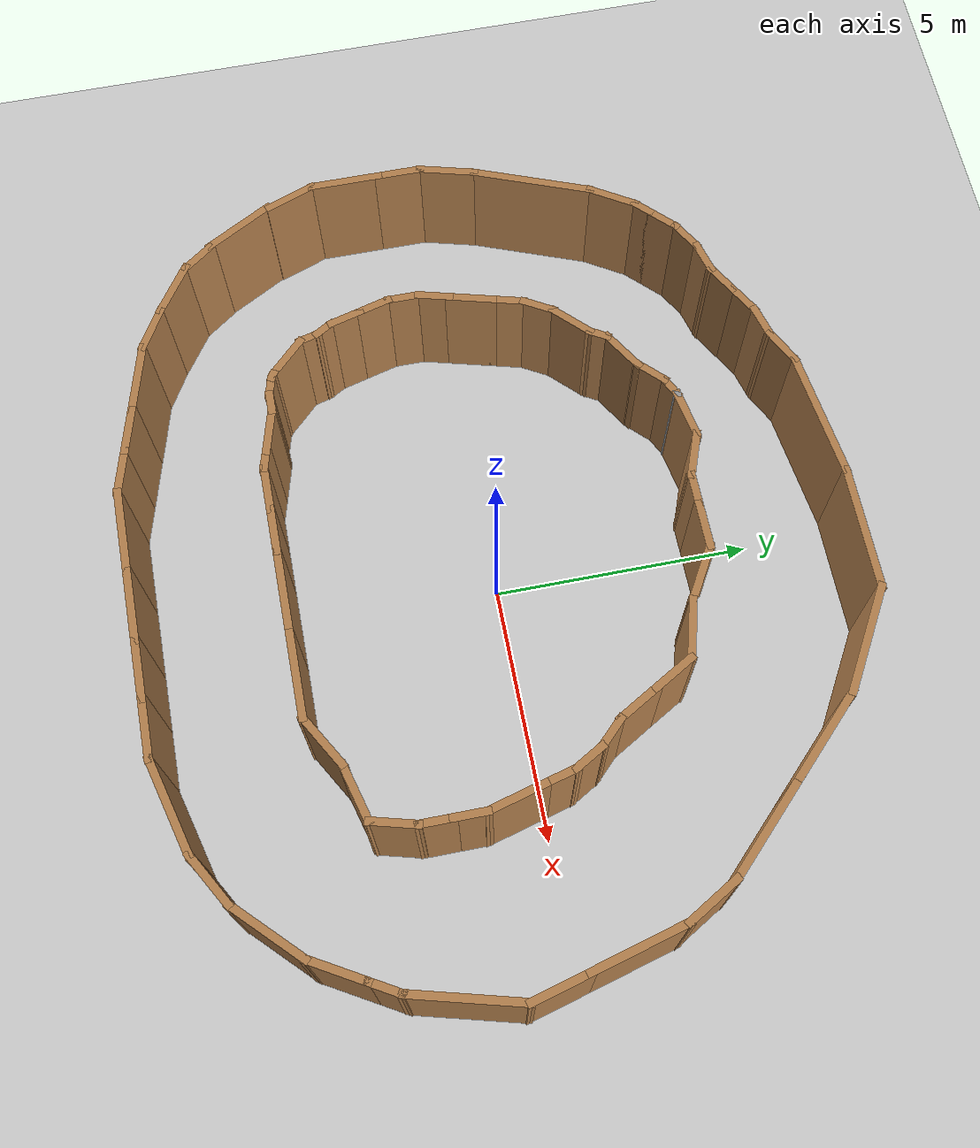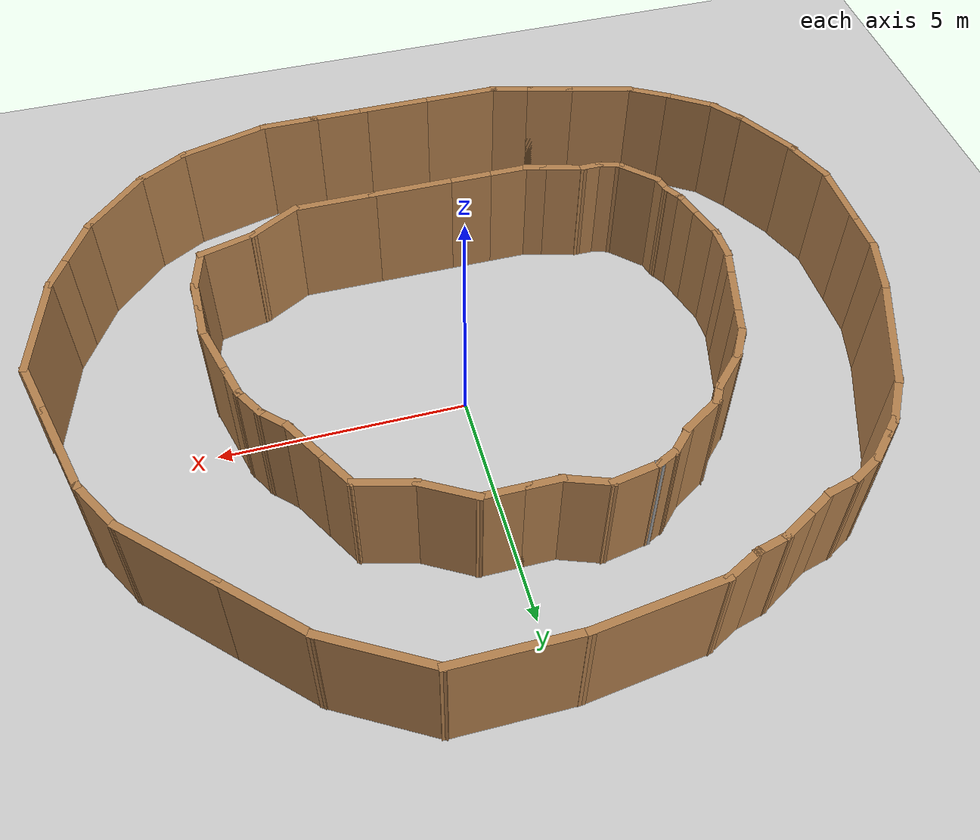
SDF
<sdf version="1.7">
 <world name="default">
  <light name="sun" type="directional">
   <pose>0 0 10 0 -0 0</pose>
   <diffuse>0.8 0.8 0.8 1</diffuse>
   <specular>0.2 0.2 0.2 1</specular>
   <attenuation>
    <range>1000</range>
    <constant>0.9</constant>
    <linear>0.01</linear>
    <quadratic>0.001</quadratic>
   </attenuation>
   <direction>-0.5 0.1 -0.9</direction>
   <spot><inner_angle>0</inner_angle><outer_angle>0</outer_angle><falloff>0</falloff></spot>
  </light>
  <model name="ground_plane">
   <static>1</static>
   <link name="link">
    <collision name="collision">
     <geometry><plane><normal>0 0 1</normal><size>100 100</size></plane></geometry>
     <surface><friction><ode><mu>100</mu><mu2>50</mu2></ode></friction></surface>
    </collision>
    <visual name="visual">
     <cast_shadows>0</cast_shadows>
     <geometry><plane><normal>0 0 1</normal><size>100 100</size></plane></geometry>
     <material>
      <script><uri>file://media/materials/scripts/gazebo.material</uri><name>Gazebo/Grey</name></script>
     </material>
    </visual>
   </link>
  </model>
  <gravity>0 0 -9.8</gravity>
  <magnetic_field>6e-06 2.3e-05 -4.2e-05</magnetic_field>
  <atmosphere type="adiabatic"/>
  <physics type="ode">
   <max_step_size>0.001</max_step_size>
   <real_time_factor>1</real_time_factor>
   <real_time_update_rate>1000</real_time_update_rate>
  </physics>
  <scene><ambient>0.4 0.4 0.4 1</ambient><background>0.7 0.7 0.7 1</background><shadows>1</shadows></scene>
  <audio><device>default</device></audio>
  <spherical_coordinates>
   <surface_model>EARTH_WGS84</surface_model>
   <latitude_deg>0</latitude_deg>
   <longitude_deg>0</longitude_deg>
   <elevation>0</elevation>
   <heading_deg>0</heading_deg>
  </spherical_coordinates>
  <model name="circle-room">
   <pose>-0.164675 0.002742 0 0 -0 0</pose>
   <link name="Wall_100">
    <collision name="Wall_100_Collision">
     <geometry><box><size>0.75 0.15 2.5</size></box></geometry>
     <pose>0 0 1.25 0 -0 0</pose>
    </collision>
    <visual name="Wall_100_Visual">
     <pose>0 0 1.25 0 -0 0</pose>
     <geometry><box><size>0.75 0.15 2.5</size></box></geometry>
     <material>
      <script><uri>file://media/materials/scripts/gazebo.material</uri><name>Gazebo/Wood</name></script>
      <ambient>1 1 1 1</ambient>
     </material>
     <meta><layer>0</layer></meta>
    </visual>
    <pose>3.98871 1.28822 0 0 -0 -0.785398</pose>
   </link>
   <link name="Wall_101">
    <collision name="Wall_101_Collision">
     <geometry><box><size>0.75 0.15 2.5</size></box></geometry>
     <pose>0 0 1.25 0 -0 0</pose>
    </collision>
    <visual name="Wall_101_Visual">
     <pose>0 0 1.25 0 -0 0</pose>
     <geometry><box><size>0.75 0.15 2.5</size></box></geometry>
     <material>
      <script><uri>file://media/materials/scripts/gazebo.material</uri><name>Gazebo/Wood</name></script>
      <ambient>1 1 1 1</ambient>
     </material>
     <meta><layer>0</layer></meta>
    </visual>
    <pose>4.35084 0.816276 0 0 -0 -1.0472</pose>
   </link>
   <link name="Wall_102">
    <collision name="Wall_102_Collision">
     <geometry><box><size>0.75 0.15 2.5</size></box></geometry>
     <pose>0 0 1.25 0 -0 0</pose>
    </collision>
    <visual name="Wall_102_Visual">
     <pose>0 0 1.25 0 -0 0</pose>
     <geometry><box><size>0.75 0.15 2.5</size></box></geometry>
     <material>
      <script><uri>file://media/materials/scripts/gazebo.material</uri><name>Gazebo/Wood</name></script>
      <ambient>1 1 1 1</ambient>
     </material>
     <meta><layer>0</layer></meta>
    </visual>
    <pose>4.57849 0.266691 0 0 -0 -1.309</pose>
   </link>
   <link name="Wall_103">
    <collision name="Wall_103_Collision">
     <geometry><box><size>1.25 0.15 2.5</size></box></geometry>
     <pose>0 0 1.25 0 -0 0</pose>
    </collision>
    <visual name="Wall_103_Visual">
     <pose>0 0 1.25 0 -0 0</pose>
     <geometry><box><size>1.25 0.15 2.5</size></box></geometry>
     <material>
      <script><uri>file://media/materials/scripts/gazebo.material</uri><name>Gazebo/Wood</name></script>
      <ambient>1 1 1 1</ambient>
     </material>
     <meta><layer>0</layer></meta>
    </visual>
    <pose>4.79849 -0.554346 0 0 -0 -1.309</pose>
   </link>
   <link name="Wall_104">
    <collision name="Wall_104_Collision">
     <geometry><box><size>0.75 0.15 2.5</size></box></geometry>
     <pose>0 0 1.25 0 -0 0</pose>
    </collision>
    <visual name="Wall_104_Visual">
     <pose>0 0 1.25 0 -0 0</pose>
     <geometry><box><size>0.75 0.15 2.5</size></box></geometry>
     <material>
      <script><uri>file://media/materials/scripts/gazebo.material</uri><name>Gazebo/Wood</name></script>
      <ambient>1 1 1 1</ambient>
     </material>
     <meta><layer>0</layer></meta>
    </visual>
    <pose>4.94084 -1.3856 0 0 -0 -1.5708</pose>
   </link>
   <link name="Wall_105">
    <collision name="Wall_105_Collision">
     <geometry><box><size>0.75 0.15 2.5</size></box></geometry>
     <pose>0 0 1.25 0 -0 0</pose>
    </collision>
    <visual name="Wall_105_Visual">
     <pose>0 0 1.25 0 -0 0</pose>
     <geometry><box><size>0.75 0.15 2.5</size></box></geometry>
     <material>
      <script><uri>file://media/materials/scripts/gazebo.material</uri><name>Gazebo/Wood</name></script>
      <ambient>1 1 1 1</ambient>
     </material>
     <meta><layer>0</layer></meta>
    </visual>
    <pose>4.94084 -1.98561 0 0 -0 -1.5708</pose>
   </link>
   <link name="Wall_106">
    <collision name="Wall_106_Collision">
     <geometry><box><size>1 0.15 2.5</size></box></geometry>
     <pose>0 0 1.25 0 -0 0</pose>
    </collision>
    <visual name="Wall_106_Visual">
     <pose>0 0 1.25 0 -0 0</pose>
     <geometry><box><size>1 0.15 2.5</size></box></geometry>
     <material>
      <script><uri>file://media/materials/scripts/gazebo.material</uri><name>Gazebo/Wood</name></script>
      <ambient>1 1 1 1</ambient>
     </material>
     <meta><layer>0</layer></meta>
    </visual>
    <pose>4.83084 -2.69612 0 0 -0 -1.8326</pose>
   </link>
   <link name="Wall_107">
    <collision name="Wall_107_Collision">
     <geometry><box><size>1.25 0.15 2.5</size></box></geometry>
     <pose>0 0 1.25 0 -0 0</pose>
    </collision>
    <visual name="Wall_107_Visual">
     <pose>0 0 1.25 0 -0 0</pose>
     <geometry><box><size>1.25 0.15 2.5</size></box></geometry>
     <material>
      <script><uri>file://media/materials/scripts/gazebo.material</uri><name>Gazebo/Wood</name></script>
      <ambient>1 1 1 1</ambient>
     </material>
     <meta><layer>0</layer></meta>
    </visual>
    <pose>4.18958 -3.24899 0 0 -0 -2.87979</pose>
   </link>
   <link name="Wall_108">
    <collision name="Wall_108_Collision">
     <geometry><box><size>1.25 0.15 2.5</size></box></geometry>
     <pose>0 0 1.25 0 -0 0</pose>
    </collision>
    <visual name="Wall_108_Visual">
     <pose>0 0 1.25 0 -0 0</pose>
     <geometry><box><size>1.25 0.15 2.5</size></box></geometry>
     <material>
      <script><uri>file://media/materials/scripts/gazebo.material</uri><name>Gazebo/Wood</name></script>
      <ambient>1 1 1 1</ambient>
     </material>
     <meta><layer>0</layer></meta>
    </visual>
    <pose>3.18201 -3.66634 0 0 -0 -2.61799</pose>
   </link>
   <link name="Wall_109">
    <collision name="Wall_109_Collision">
     <geometry><box><size>1.75 0.15 2.5</size></box></geometry>
     <pose>0 0 1.25 0 -0 0</pose>
    </collision>
    <visual name="Wall_109_Visual">
     <pose>0 0 1.25 0 -0 0</pose>
     <geometry><box><size>1.75 0.15 2.5</size></box></geometry>
     <material>
      <script><uri>file://media/materials/scripts/gazebo.material</uri><name>Gazebo/Wood</name></script>
      <ambient>1 1 1 1</ambient>
     </material>
     <meta><layer>0</layer></meta>
    </visual>
    <pose>1.90569 -3.94134 0 0 -0 3.14159</pose>
   </link>
   <link name="Wall_110">
    <collision name="Wall_110_Collision">
     <geometry><box><size>1.75 0.15 2.5</size></box></geometry>
     <pose>0 0 1.25 0 -0 0</pose>
    </collision>
    <visual name="Wall_110_Visual">
     <pose>0 0 1.25 0 -0 0</pose>
     <geometry><box><size>1.75 0.15 2.5</size></box></geometry>
     <material>
      <script><uri>file://media/materials/scripts/gazebo.material</uri><name>Gazebo/Wood</name></script>
      <ambient>1 1 1 1</ambient>
     </material>
     <meta><layer>0</layer></meta>
    </visual>
    <pose>0.305695 -3.94134 0 0 -0 3.14159</pose>
   </link>
   <link name="Wall_111">
    <collision name="Wall_111_Collision">
     <geometry><box><size>1 0.15 2.5</size></box></geometry>
     <pose>0 0 1.25 0 -0 0</pose>
    </collision>
    <visual name="Wall_111_Visual">
     <pose>0 0 1.25 0 -0 0</pose>
     <geometry><box><size>1 0.15 2.5</size></box></geometry>
     <material>
      <script><uri>file://media/materials/scripts/gazebo.material</uri><name>Gazebo/Wood</name></script>
      <ambient>1 1 1 1</ambient>
     </material>
     <meta><layer>0</layer></meta>
    </visual>
    <pose>-0.919305 -3.94134 0 0 -0 3.14159</pose>
   </link>
   <link name="Wall_112">
    <collision name="Wall_112_Collision">
     <geometry><box><size>1 0.15 2.5</size></box></geometry>
     <pose>0 0 1.25 0 -0 0</pose>
    </collision>
    <visual name="Wall_112_Visual">
     <pose>0 0 1.25 0 -0 0</pose>
     <geometry><box><size>1 0.15 2.5</size></box></geometry>
     <material>
      <script><uri>file://media/materials/scripts/gazebo.material</uri><name>Gazebo/Wood</name></script>
      <ambient>1 1 1 1</ambient>
     </material>
     <meta><layer>0</layer></meta>
    </visual>
    <pose>-1.7693 -3.94134 0 0 -0 3.14159</pose>
   </link>
   <link name="Wall_113">
    <collision name="Wall_113_Collision">
     <geometry><box><size>0.5 0.15 2.5</size></box></geometry>
     <pose>0 0 1.25 0 -0 0</pose>
    </collision>
    <visual name="Wall_113_Visual">
     <pose>0 0 1.25 0 -0 0</pose>
     <geometry><box><size>0.5 0.15 2.5</size></box></geometry>
     <material>
      <script><uri>file://media/materials/scripts/gazebo.material</uri><name>Gazebo/Wood</name></script>
      <ambient>1 1 1 1</ambient>
     </material>
     <meta><layer>0</layer></meta>
    </visual>
    <pose>-2.36334 -3.89605 0 0 -0 2.87979</pose>
   </link>
   <link name="Wall_114">
    <collision name="Wall_114_Collision">
     <geometry><box><size>1 0.15 2.5</size></box></geometry>
     <pose>0 0 1.25 0 -0 0</pose>
    </collision>
    <visual name="Wall_114_Visual">
     <pose>0 0 1.25 0 -0 0</pose>
     <geometry><box><size>1 0.15 2.5</size></box></geometry>
     <material>
      <script><uri>file://media/materials/scripts/gazebo.material</uri><name>Gazebo/Wood</name></script>
      <ambient>1 1 1 1</ambient>
     </material>
     <meta><layer>0</layer></meta>
    </visual>
    <pose>-2.9429 -3.74076 0 0 -0 2.87979</pose>
   </link>
   <link name="Wall_115">
    <collision name="Wall_115_Collision">
     <geometry><box><size>0.5 0.15 2.5</size></box></geometry>
     <pose>0 0 1.25 0 -0 0</pose>
    </collision>
    <visual name="Wall_115_Visual">
     <pose>0 0 1.25 0 -0 0</pose>
     <geometry><box><size>0.5 0.15 2.5</size></box></geometry>
     <material>
      <script><uri>file://media/materials/scripts/gazebo.material</uri><name>Gazebo/Wood</name></script>
      <ambient>1 1 1 1</ambient>
     </material>
     <meta><layer>0</layer></meta>
    </visual>
    <pose>-3.52842 -3.63076 0 0 -0 3.14159</pose>
   </link>
   <link name="Wall_116">
    <collision name="Wall_116_Collision">
     <geometry><box><size>0.5 0.15 2.5</size></box></geometry>
     <pose>0 0 1.25 0 -0 0</pose>
    </collision>
    <visual name="Wall_116_Visual">
     <pose>0 0 1.25 0 -0 0</pose>
     <geometry><box><size>0.5 0.15 2.5</size></box></geometry>
     <material>
      <script><uri>file://media/materials/scripts/gazebo.material</uri><name>Gazebo/Wood</name></script>
      <ambient>1 1 1 1</ambient>
     </material>
     <meta><layer>0</layer></meta>
    </visual>
    <pose>-3.87245 -3.58547 0 0 -0 2.87979</pose>
   </link>
   <link name="Wall_117">
    <collision name="Wall_117_Collision">
     <geometry><box><size>0.25 0.15 2.5</size></box></geometry>
     <pose>0 0 1.25 0 -0 0</pose>
    </collision>
    <visual name="Wall_117_Visual">
     <pose>0 0 1.25 0 -0 0</pose>
     <geometry><box><size>0.25 0.15 2.5</size></box></geometry>
     <material>
      <script><uri>file://media/materials/scripts/gazebo.material</uri><name>Gazebo/Wood</name></script>
      <ambient>1 1 1 1</ambient>
     </material>
     <meta><layer>0</layer></meta>
    </visual>
    <pose>-4.08479 -3.51517 0 0 -0 2.61799</pose>
   </link>
   <link name="Wall_118">
    <collision name="Wall_118_Collision">
     <geometry><box><size>1 0.15 2.5</size></box></geometry>
     <pose>0 0 1.25 0 -0 0</pose>
    </collision>
    <visual name="Wall_118_Visual">
     <pose>0 0 1.25 0 -0 0</pose>
     <geometry><box><size>1 0.15 2.5</size></box></geometry>
     <material>
      <script><uri>file://media/materials/scripts/gazebo.material</uri><name>Gazebo/Wood</name></script>
      <ambient>1 1 1 1</ambient>
     </material>
     <meta><layer>0</layer></meta>
    </visual>
    <pose>-4.42861 -3.18965 0 0 -0 2.35619</pose>
   </link>
   <link name="Wall_119">
    <collision name="Wall_119_Collision">
     <geometry><box><size>0.5 0.15 2.5</size></box></geometry>
     <pose>0 0 1.25 0 -0 0</pose>
    </collision>
    <visual name="Wall_119_Visual">
     <pose>0 0 1.25 0 -0 0</pose>
     <geometry><box><size>0.5 0.15 2.5</size></box></geometry>
     <material>
      <script><uri>file://media/materials/scripts/gazebo.material</uri><name>Gazebo/Wood</name></script>
      <ambient>1 1 1 1</ambient>
     </material>
     <meta><layer>0</layer></meta>
    </visual>
    <pose>-4.77443 -2.7201 0 0 -0 1.8326</pose>
   </link>
   <link name="Wall_12">
    <collision name="Wall_12_Collision">
     <geometry><box><size>2.61004 0.15 2.5</size></box></geometry>
     <pose>0 0 1.25 0 -0 0</pose>
    </collision>
    <visual name="Wall_12_Visual">
     <pose>0 0 1.25 0 -0 0</pose>
     <geometry><box><size>2.61004 0.15 2.5</size></box></geometry>
     <material>
      <script><uri>file://media/materials/scripts/gazebo.material</uri><name>Gazebo/Wood</name></script>
      <ambient>1 1 1 1</ambient>
     </material>
     <meta><layer>0</layer></meta>
    </visual>
    <pose>-1.30754 6.48321 0 0 -0 0.134152</pose>
   </link>
   <link name="Wall_120">
    <collision name="Wall_120_Collision">
     <geometry><box><size>0.5 0.15 2.5</size></box></geometry>
     <pose>0 0 1.25 0 -0 0</pose>
    </collision>
    <visual name="Wall_120_Visual">
     <pose>0 0 1.25 0 -0 0</pose>
     <geometry><box><size>0.5 0.15 2.5</size></box></geometry>
     <material>
      <script><uri>file://media/materials/scripts/gazebo.material</uri><name>Gazebo/Wood</name></script>
      <ambient>1 1 1 1</ambient>
     </material>
     <meta><layer>0</layer></meta>
    </visual>
    <pose>-4.90722 -2.3995 0 0 -0 2.0944</pose>
   </link>
   <link name="Wall_121">
    <collision name="Wall_121_Collision">
     <geometry><box><size>0.75 0.15 2.5</size></box></geometry>
     <pose>0 0 1.25 0 -0 0</pose>
    </collision>
    <visual name="Wall_121_Visual">
     <pose>0 0 1.25 0 -0 0</pose>
     <geometry><box><size>0.75 0.15 2.5</size></box></geometry>
     <material>
      <script><uri>file://media/materials/scripts/gazebo.material</uri><name>Gazebo/Wood</name></script>
      <ambient>1 1 1 1</ambient>
     </material>
     <meta><layer>0</layer></meta>
    </visual>
    <pose>-5.07237 -1.95817 0 0 -0 1.8326</pose>
   </link>
   <link name="Wall_122">
    <collision name="Wall_122_Collision">
     <geometry><box><size>0.75 0.15 2.5</size></box></geometry>
     <pose>0 0 1.25 0 -0 0</pose>
    </collision>
    <visual name="Wall_122_Visual">
     <pose>0 0 1.25 0 -0 0</pose>
     <geometry><box><size>0.75 0.15 2.5</size></box></geometry>
     <material>
      <script><uri>file://media/materials/scripts/gazebo.material</uri><name>Gazebo/Wood</name></script>
      <ambient>1 1 1 1</ambient>
     </material>
     <meta><layer>0</layer></meta>
    </visual>
    <pose>-5.22766 -1.37862 0 0 -0 1.8326</pose>
   </link>
   <link name="Wall_123">
    <collision name="Wall_123_Collision">
     <geometry><box><size>0.75 0.15 2.5</size></box></geometry>
     <pose>0 0 1.25 0 -0 0</pose>
    </collision>
    <visual name="Wall_123_Visual">
     <pose>0 0 1.25 0 -0 0</pose>
     <geometry><box><size>0.75 0.15 2.5</size></box></geometry>
     <material>
      <script><uri>file://media/materials/scripts/gazebo.material</uri><name>Gazebo/Wood</name></script>
      <ambient>1 1 1 1</ambient>
     </material>
     <meta><layer>0</layer></meta>
    </visual>
    <pose>-5.3053 -0.788839 0 0 -0 1.5708</pose>
   </link>
   <link name="Wall_124">
    <collision name="Wall_124_Collision">
     <geometry><box><size>0.75 0.15 2.5</size></box></geometry>
     <pose>0 0 1.25 0 -0 0</pose>
    </collision>
    <visual name="Wall_124_Visual">
     <pose>0 0 1.25 0 -0 0</pose>
     <geometry><box><size>0.75 0.15 2.5</size></box></geometry>
     <material>
      <script><uri>file://media/materials/scripts/gazebo.material</uri><name>Gazebo/Wood</name></script>
      <ambient>1 1 1 1</ambient>
     </material>
     <meta><layer>0</layer></meta>
    </visual>
    <pose>-5.22766 -0.199061 0 0 -0 1.309</pose>
   </link>
   <link name="Wall_125">
    <collision name="Wall_125_Collision">
     <geometry><box><size>1 0.15 2.5</size></box></geometry>
     <pose>0 0 1.25 0 -0 0</pose>
    </collision>
    <visual name="Wall_125_Visual">
     <pose>0 0 1.25 0 -0 0</pose>
     <geometry><box><size>1 0.15 2.5</size></box></geometry>
     <material>
      <script><uri>file://media/materials/scripts/gazebo.material</uri><name>Gazebo/Wood</name></script>
      <ambient>1 1 1 1</ambient>
     </material>
     <meta><layer>0</layer></meta>
    </visual>
    <pose>-5.04001 0.501235 0 0 -0 1.309</pose>
   </link>
   <link name="Wall_126">
    <collision name="Wall_126_Collision">
     <geometry><box><size>0.75 0.15 2.5</size></box></geometry>
     <pose>0 0 1.25 0 -0 0</pose>
    </collision>
    <visual name="Wall_126_Visual">
     <pose>0 0 1.25 0 -0 0</pose>
     <geometry><box><size>0.75 0.15 2.5</size></box></geometry>
     <material>
      <script><uri>file://media/materials/scripts/gazebo.material</uri><name>Gazebo/Wood</name></script>
      <ambient>1 1 1 1</ambient>
     </material>
     <meta><layer>0</layer></meta>
    </visual>
    <pose>-4.85237 1.20153 0 0 -0 1.309</pose>
   </link>
   <link name="Wall_127">
    <collision name="Wall_127_Collision">
     <geometry><box><size>0.75 0.15 2.5</size></box></geometry>
     <pose>0 0 1.25 0 -0 0</pose>
    </collision>
    <visual name="Wall_127_Visual">
     <pose>0 0 1.25 0 -0 0</pose>
     <geometry><box><size>0.75 0.15 2.5</size></box></geometry>
     <material>
      <script><uri>file://media/materials/scripts/gazebo.material</uri><name>Gazebo/Wood</name></script>
      <ambient>1 1 1 1</ambient>
     </material>
     <meta><layer>0</layer></meta>
    </visual>
    <pose>-4.62472 1.75112 0 0 -0 1.0472</pose>
   </link>
   <link name="Wall_128">
    <collision name="Wall_128_Collision">
     <geometry><box><size>1 0.15 2.5</size></box></geometry>
     <pose>0 0 1.25 0 -0 0</pose>
    </collision>
    <visual name="Wall_128_Visual">
     <pose>0 0 1.25 0 -0 0</pose>
     <geometry><box><size>1 0.15 2.5</size></box></geometry>
     <material>
      <script><uri>file://media/materials/scripts/gazebo.material</uri><name>Gazebo/Wood</name></script>
      <ambient>1 1 1 1</ambient>
     </material>
     <meta><layer>0</layer></meta>
    </visual>
    <pose>-4.1742 2.31144 0 0 -0 0.785398</pose>
   </link>
   <link name="Wall_129">
    <collision name="Wall_129_Collision">
     <geometry><box><size>0.5 0.15 2.5</size></box></geometry>
     <pose>0 0 1.25 0 -0 0</pose>
    </collision>
    <visual name="Wall_129_Visual">
     <pose>0 0 1.25 0 -0 0</pose>
     <geometry><box><size>0.5 0.15 2.5</size></box></geometry>
     <material>
      <script><uri>file://media/materials/scripts/gazebo.material</uri><name>Gazebo/Wood</name></script>
      <ambient>1 1 1 1</ambient>
     </material>
     <meta><layer>0</layer></meta>
    </visual>
    <pose>-3.78618 2.76352 0 0 -0 1.0472</pose>
   </link>
   <link name="Wall_13">
    <collision name="Wall_13_Collision">
     <geometry><box><size>2.5 0.15 2.5</size></box></geometry>
     <pose>0 0 1.25 0 -0 0</pose>
    </collision>
    <visual name="Wall_13_Visual">
     <pose>0 0 1.25 0 -0 0</pose>
     <geometry><box><size>2.5 0.15 2.5</size></box></geometry>
     <material>
      <script><uri>file://media/materials/scripts/gazebo.material</uri><name>Gazebo/Wood</name></script>
      <ambient>1 1 1 1</ambient>
     </material>
     <meta><layer>0</layer></meta>
    </visual>
    <pose>1.08643 6.64773 0 0 -0 0</pose>
   </link>
   <link name="Wall_130">
    <collision name="Wall_130_Collision">
     <geometry><box><size>0.993936 0.15 2.5</size></box></geometry>
     <pose>0 0 1.25 0 -0 0</pose>
    </collision>
    <visual name="Wall_130_Visual">
     <pose>0 0 1.25 0 -0 0</pose>
     <geometry><box><size>0.993936 0.15 2.5</size></box></geometry>
     <material>
      <script><uri>file://media/materials/scripts/gazebo.material</uri><name>Gazebo/Wood</name></script>
      <ambient>1 1 1 1</ambient>
     </material>
     <meta><layer>0</layer></meta>
    </visual>
    <pose>-3.33937 3.13632 0 0 -0 0.551913</pose>
   </link>
   <link name="Wall_131">
    <collision name="Wall_131_Collision">
     <geometry><box><size>0.75 0.15 2.5</size></box></geometry>
     <pose>0 0 1.25 0 -0 0</pose>
    </collision>
    <visual name="Wall_131_Visual">
     <pose>0 0 1.25 0 -0 0</pose>
     <geometry><box><size>0.75 0.15 2.5</size></box></geometry>
     <material>
      <script><uri>file://media/materials/scripts/gazebo.material</uri><name>Gazebo/Wood</name></script>
      <ambient>1 1 1 1</ambient>
     </material>
     <meta><layer>0</layer></meta>
    </visual>
    <pose>-2.78541 3.5697 0 0 -0 0.785398</pose>
   </link>
   <link name="Wall_132">
    <collision name="Wall_132_Collision">
     <geometry><box><size>0.507202 0.15 2.5</size></box></geometry>
     <pose>0 0 1.25 0 -0 0</pose>
    </collision>
    <visual name="Wall_132_Visual">
     <pose>0 0 1.25 0 -0 0</pose>
     <geometry><box><size>0.507202 0.15 2.5</size></box></geometry>
     <material>
      <script><uri>file://media/materials/scripts/gazebo.material</uri><name>Gazebo/Wood</name></script>
      <ambient>1 1 1 1</ambient>
     </material>
     <meta><layer>0</layer></meta>
    </visual>
    <pose>-2.39549 3.86058 0 0 -0 0.456663</pose>
   </link>
   <link name="Wall_133">
    <collision name="Wall_133_Collision">
     <geometry><box><size>0.15 0.15 2.5</size></box></geometry>
     <pose>0 0 1.25 0 -0 0</pose>
    </collision>
    <visual name="Wall_133_Visual">
     <pose>0 0 1.25 0 -0 0</pose>
     <geometry><box><size>0.15 0.15 2.5</size></box></geometry>
     <material>
      <script><uri>file://media/materials/scripts/gazebo.material</uri><name>Gazebo/Grey</name></script>
      <ambient>1 1 1 1</ambient>
     </material>
     <meta><layer>0</layer></meta>
    </visual>
    <pose>-2.23519 3.93934 0 0 -0 0</pose>
   </link>
   <link name="Wall_134">
    <collision name="Wall_134_Collision">
     <geometry><box><size>1.05405 0.15 2.5</size></box></geometry>
     <pose>0 0 1.25 0 -0 0</pose>
    </collision>
    <visual name="Wall_134_Visual">
     <pose>0 0 1.25 0 -0 0</pose>
     <geometry><box><size>1.05405 0.15 2.5</size></box></geometry>
     <material>
      <script><uri>file://media/materials/scripts/gazebo.material</uri><name>Gazebo/Wood</name></script>
      <ambient>1 1 1 1</ambient>
     </material>
     <meta><layer>0</layer></meta>
    </visual>
    <pose>-1.79078 4.02198 0 0 -0 0.183861</pose>
   </link>
   <link name="Wall_14">
    <collision name="Wall_14_Collision">
     <geometry><box><size>2.25 0.15 2.5</size></box></geometry>
     <pose>0 0 1.25 0 -0 0</pose>
    </collision>
    <visual name="Wall_14_Visual">
     <pose>0 0 1.25 0 -0 0</pose>
     <geometry><box><size>2.25 0.15 2.5</size></box></geometry>
     <material>
      <script><uri>file://media/materials/scripts/gazebo.material</uri><name>Gazebo/Wood</name></script>
      <ambient>1 1 1 1</ambient>
     </material>
     <meta><layer>0</layer></meta>
    </visual>
    <pose>3.17075 6.12273 0 0 -0 -0.523599</pose>
   </link>
   <link name="Wall_15">
    <collision name="Wall_15_Collision">
     <geometry><box><size>2 0.15 2.5</size></box></geometry>
     <pose>0 0 1.25 0 -0 0</pose>
    </collision>
    <visual name="Wall_15_Visual">
     <pose>0 0 1.25 0 -0 0</pose>
     <geometry><box><size>2 0.15 2.5</size></box></geometry>
     <material>
      <script><uri>file://media/materials/scripts/gazebo.material</uri><name>Gazebo/Wood</name></script>
      <ambient>1 1 1 1</ambient>
     </material>
     <meta><layer>0</layer></meta>
    </visual>
    <pose>4.73415 4.94365 0 0 -0 -0.785398</pose>
   </link>
   <link name="Wall_16">
    <collision name="Wall_16_Collision">
     <geometry><box><size>2.25 0.15 2.5</size></box></geometry>
     <pose>0 0 1.25 0 -0 0</pose>
    </collision>
    <visual name="Wall_16_Visual">
     <pose>0 0 1.25 0 -0 0</pose>
     <geometry><box><size>2.25 0.15 2.5</size></box></geometry>
     <material>
      <script><uri>file://media/materials/scripts/gazebo.material</uri><name>Gazebo/Wood</name></script>
      <ambient>1 1 1 1</ambient>
     </material>
     <meta><layer>0</layer></meta>
    </visual>
    <pose>6.13069 3.54712 0 0 -0 -0.785398</pose>
   </link>
   <link name="Wall_17">
    <collision name="Wall_17_Collision">
     <geometry><box><size>1.25 0.15 2.5</size></box></geometry>
     <pose>0 0 1.25 0 -0 0</pose>
    </collision>
    <visual name="Wall_17_Visual">
     <pose>0 0 1.25 0 -0 0</pose>
     <geometry><box><size>1.25 0.15 2.5</size></box></geometry>
     <material>
      <script><uri>file://media/materials/scripts/gazebo.material</uri><name>Gazebo/Wood</name></script>
      <ambient>1 1 1 1</ambient>
     </material>
     <meta><layer>0</layer></meta>
    </visual>
    <pose>7.14815 2.32834 0 0 -0 -1.0472</pose>
   </link>
   <link name="Wall_18">
    <collision name="Wall_18_Collision">
     <geometry><box><size>2 0.15 2.5</size></box></geometry>
     <pose>0 0 1.25 0 -0 0</pose>
    </collision>
    <visual name="Wall_18_Visual">
     <pose>0 0 1.25 0 -0 0</pose>
     <geometry><box><size>2 0.15 2.5</size></box></geometry>
     <material>
      <script><uri>file://media/materials/scripts/gazebo.material</uri><name>Gazebo/Wood</name></script>
      <ambient>1 1 1 1</ambient>
     </material>
     <meta><layer>0</layer></meta>
    </visual>
    <pose>7.66256 0.958548 0 0 -0 -1.309</pose>
   </link>
   <link name="Wall_19">
    <collision name="Wall_19_Collision">
     <geometry><box><size>1.25 0.15 2.5</size></box></geometry>
     <pose>0 0 1.25 0 -0 0</pose>
    </collision>
    <visual name="Wall_19_Visual">
     <pose>0 0 1.25 0 -0 0</pose>
     <geometry><box><size>1.25 0.15 2.5</size></box></geometry>
     <material>
      <script><uri>file://media/materials/scripts/gazebo.material</uri><name>Gazebo/Wood</name></script>
      <ambient>1 1 1 1</ambient>
     </material>
     <meta><layer>0</layer></meta>
    </visual>
    <pose>8.04432 -0.466193 0 0 -0 -1.309</pose>
   </link>
   <link name="Wall_20">
    <collision name="Wall_20_Collision">
     <geometry><box><size>2.25 0.15 2.5</size></box></geometry>
     <pose>0 0 1.25 0 -0 0</pose>
    </collision>
    <visual name="Wall_20_Visual">
     <pose>0 0 1.25 0 -0 0</pose>
     <geometry><box><size>2.25 0.15 2.5</size></box></geometry>
     <material>
      <script><uri>file://media/materials/scripts/gazebo.material</uri><name>Gazebo/Wood</name></script>
      <ambient>1 1 1 1</ambient>
     </material>
     <meta><layer>0</layer></meta>
    </visual>
    <pose>7.91491 -2.01167 0 0 -0 -1.8326</pose>
   </link>
   <link name="Wall_21">
    <collision name="Wall_21_Collision">
     <geometry><box><size>0.75 0.15 2.5</size></box></geometry>
     <pose>0 0 1.25 0 -0 0</pose>
    </collision>
    <visual name="Wall_21_Visual">
     <pose>0 0 1.25 0 -0 0</pose>
     <geometry><box><size>0.75 0.15 2.5</size></box></geometry>
     <material>
      <script><uri>file://media/materials/scripts/gazebo.material</uri><name>Gazebo/Wood</name></script>
      <ambient>1 1 1 1</ambient>
     </material>
     <meta><layer>0</layer></meta>
    </visual>
    <pose>7.49315 -3.2857 0 0 -0 -2.0944</pose>
   </link>
   <link name="Wall_22">
    <collision name="Wall_22_Collision">
     <geometry><box><size>1.25 0.15 2.5</size></box></geometry>
     <pose>0 0 1.25 0 -0 0</pose>
    </collision>
    <visual name="Wall_22_Visual">
     <pose>0 0 1.25 0 -0 0</pose>
     <geometry><box><size>1.25 0.15 2.5</size></box></geometry>
     <material>
      <script><uri>file://media/materials/scripts/gazebo.material</uri><name>Gazebo/Wood</name></script>
      <ambient>1 1 1 1</ambient>
     </material>
     <meta><layer>0</layer></meta>
    </visual>
    <pose>7.06815 -4.02182 0 0 -0 -2.0944</pose>
   </link>
   <link name="Wall_23">
    <collision name="Wall_23_Collision">
     <geometry><box><size>1.75 0.15 2.5</size></box></geometry>
     <pose>0 0 1.25 0 -0 0</pose>
    </collision>
    <visual name="Wall_23_Visual">
     <pose>0 0 1.25 0 -0 0</pose>
     <geometry><box><size>1.75 0.15 2.5</size></box></geometry>
     <material>
      <script><uri>file://media/materials/scripts/gazebo.material</uri><name>Gazebo/Wood</name></script>
      <ambient>1 1 1 1</ambient>
     </material>
     <meta><layer>0</layer></meta>
    </visual>
    <pose>6.22746 -5.06382 0 0 -0 -2.35619</pose>
   </link>
   <link name="Wall_24">
    <collision name="Wall_24_Collision">
     <geometry><box><size>1.25 0.15 2.5</size></box></geometry>
     <pose>0 0 1.25 0 -0 0</pose>
    </collision>
    <visual name="Wall_24_Visual">
     <pose>0 0 1.25 0 -0 0</pose>
     <geometry><box><size>1.25 0.15 2.5</size></box></geometry>
     <material>
      <script><uri>file://media/materials/scripts/gazebo.material</uri><name>Gazebo/Wood</name></script>
      <ambient>1 1 1 1</ambient>
     </material>
     <meta><layer>0</layer></meta>
    </visual>
    <pose>5.18546 -5.90451 0 0 -0 -2.61799</pose>
   </link>
   <link name="Wall_25">
    <collision name="Wall_25_Collision">
     <geometry><box><size>2 0.15 2.5</size></box></geometry>
     <pose>0 0 1.25 0 -0 0</pose>
    </collision>
    <visual name="Wall_25_Visual">
     <pose>0 0 1.25 0 -0 0</pose>
     <geometry><box><size>2 0.15 2.5</size></box></geometry>
     <material>
      <script><uri>file://media/materials/scripts/gazebo.material</uri><name>Gazebo/Wood</name></script>
      <ambient>1 1 1 1</ambient>
     </material>
     <meta><layer>0</layer></meta>
    </visual>
    <pose>3.81567 -6.41892 0 0 -0 -2.87979</pose>
   </link>
   <link name="Wall_26">
    <collision name="Wall_26_Collision">
     <geometry><box><size>1.25 0.15 2.5</size></box></geometry>
     <pose>0 0 1.25 0 -0 0</pose>
    </collision>
    <visual name="Wall_26_Visual">
     <pose>0 0 1.25 0 -0 0</pose>
     <geometry><box><size>1.25 0.15 2.5</size></box></geometry>
     <material>
      <script><uri>file://media/materials/scripts/gazebo.material</uri><name>Gazebo/Wood</name></script>
      <ambient>1 1 1 1</ambient>
     </material>
     <meta><layer>0</layer></meta>
    </visual>
    <pose>2.37219 -6.65832 0 0 -0 3.14159</pose>
   </link>
   <link name="Wall_27">
    <collision name="Wall_27_Collision">
     <geometry><box><size>1.25 0.15 2.5</size></box></geometry>
     <pose>0 0 1.25 0 -0 0</pose>
    </collision>
    <visual name="Wall_27_Visual">
     <pose>0 0 1.25 0 -0 0</pose>
     <geometry><box><size>1.25 0.15 2.5</size></box></geometry>
     <material>
      <script><uri>file://media/materials/scripts/gazebo.material</uri><name>Gazebo/Wood</name></script>
      <ambient>1 1 1 1</ambient>
     </material>
     <meta><layer>0</layer></meta>
    </visual>
    <pose>1.27219 -6.65832 0 0 -0 3.14159</pose>
   </link>
   <link name="Wall_28">
    <collision name="Wall_28_Collision">
     <geometry><box><size>1.5 0.15 2.5</size></box></geometry>
     <pose>0 0 1.25 0 -0 0</pose>
    </collision>
    <visual name="Wall_28_Visual">
     <pose>0 0 1.25 0 -0 0</pose>
     <geometry><box><size>1.5 0.15 2.5</size></box></geometry>
     <material>
      <script><uri>file://media/materials/scripts/gazebo.material</uri><name>Gazebo/Wood</name></script>
      <ambient>1 1 1 1</ambient>
     </material>
     <meta><layer>0</layer></meta>
    </visual>
    <pose>0.047187 -6.65832 0 0 -0 3.14159</pose>
   </link>
   <link name="Wall_29">
    <collision name="Wall_29_Collision">
     <geometry><box><size>1.75 0.15 2.5</size></box></geometry>
     <pose>0 0 1.25 0 -0 0</pose>
    </collision>
    <visual name="Wall_29_Visual">
     <pose>0 0 1.25 0 -0 0</pose>
     <geometry><box><size>1.75 0.15 2.5</size></box></geometry>
     <material>
      <script><uri>file://media/materials/scripts/gazebo.material</uri><name>Gazebo/Wood</name></script>
      <ambient>1 1 1 1</ambient>
     </material>
     <meta><layer>0</layer></meta>
    </visual>
    <pose>-1.42781 -6.65832 0 0 -0 3.14159</pose>
   </link>
   <link name="Wall_30">
    <collision name="Wall_30_Collision">
     <geometry><box><size>1 0.15 2.5</size></box></geometry>
     <pose>0 0 1.25 0 -0 0</pose>
    </collision>
    <visual name="Wall_30_Visual">
     <pose>0 0 1.25 0 -0 0</pose>
     <geometry><box><size>1 0.15 2.5</size></box></geometry>
     <material>
      <script><uri>file://media/materials/scripts/gazebo.material</uri><name>Gazebo/Wood</name></script>
      <ambient>1 1 1 1</ambient>
     </material>
     <meta><layer>0</layer></meta>
    </visual>
    <pose>-2.63833 -6.54833 0 0 -0 2.87979</pose>
   </link>
   <link name="Wall_31">
    <collision name="Wall_31_Collision">
     <geometry><box><size>1 0.15 2.5</size></box></geometry>
     <pose>0 0 1.25 0 -0 0</pose>
    </collision>
    <visual name="Wall_31_Visual">
     <pose>0 0 1.25 0 -0 0</pose>
     <geometry><box><size>1 0.15 2.5</size></box></geometry>
     <material>
      <script><uri>file://media/materials/scripts/gazebo.material</uri><name>Gazebo/Wood</name></script>
      <ambient>1 1 1 1</ambient>
     </material>
     <meta><layer>0</layer></meta>
    </visual>
    <pose>-3.45937 -6.32833 0 0 -0 2.87979</pose>
   </link>
   <link name="Wall_32">
    <collision name="Wall_32_Collision">
     <geometry><box><size>1.5 0.15 2.5</size></box></geometry>
     <pose>0 0 1.25 0 -0 0</pose>
    </collision>
    <visual name="Wall_32_Visual">
     <pose>0 0 1.25 0 -0 0</pose>
     <geometry><box><size>1.5 0.15 2.5</size></box></geometry>
     <material>
      <script><uri>file://media/materials/scripts/gazebo.material</uri><name>Gazebo/Wood</name></script>
      <ambient>1 1 1 1</ambient>
     </material>
     <meta><layer>0</layer></meta>
    </visual>
    <pose>-4.52189 -6.04363 0 0 -0 2.87979</pose>
   </link>
   <link name="Wall_33">
    <collision name="Wall_33_Collision">
     <geometry><box><size>1 0.15 2.5</size></box></geometry>
     <pose>0 0 1.25 0 -0 0</pose>
    </collision>
    <visual name="Wall_33_Visual">
     <pose>0 0 1.25 0 -0 0</pose>
     <geometry><box><size>1 0.15 2.5</size></box></geometry>
     <material>
      <script><uri>file://media/materials/scripts/gazebo.material</uri><name>Gazebo/Wood</name></script>
      <ambient>1 1 1 1</ambient>
     </material>
     <meta><layer>0</layer></meta>
    </visual>
    <pose>-5.54195 -5.65643 0 0 -0 2.61799</pose>
   </link>
   <link name="Wall_34">
    <collision name="Wall_34_Collision">
     <geometry><box><size>1.21989 0.15 2.5</size></box></geometry>
     <pose>0 0 1.25 0 -0 0</pose>
    </collision>
    <visual name="Wall_34_Visual">
     <pose>0 0 1.25 0 -0 0</pose>
     <geometry><box><size>1.21989 0.15 2.5</size></box></geometry>
     <material>
      <script><uri>file://media/materials/scripts/gazebo.material</uri><name>Gazebo/Wood</name></script>
      <ambient>1 1 1 1</ambient>
     </material>
     <meta><layer>0</layer></meta>
    </visual>
    <pose>-6.35381 -5.14526 0 0 -0 2.54924</pose>
   </link>
   <link name="Wall_35">
    <collision name="Wall_35_Collision">
     <geometry><box><size>0.799296 0.15 2.5</size></box></geometry>
     <pose>0 0 1.25 0 -0 0</pose>
    </collision>
    <visual name="Wall_35_Visual">
     <pose>0 0 1.25 0 -0 0</pose>
     <geometry><box><size>0.799296 0.15 2.5</size></box></geometry>
     <material>
      <script><uri>file://media/materials/scripts/gazebo.material</uri><name>Gazebo/Wood</name></script>
      <ambient>1 1 1 1</ambient>
     </material>
     <meta><layer>0</layer></meta>
    </visual>
    <pose>-6.96614 -4.58454 0 0 -0 2.20225</pose>
   </link>
   <link name="Wall_4">
    <collision name="Wall_4_Collision">
     <geometry><box><size>1.57611 0.15 2.5</size></box></geometry>
     <pose>0 0 1.25 0 -0 0</pose>
    </collision>
    <visual name="Wall_4_Visual">
     <pose>0 0 1.25 0 -0 0</pose>
     <geometry><box><size>1.57611 0.15 2.5</size></box></geometry>
     <material>
      <script><uri>file://media/materials/scripts/gazebo.material</uri><name>Gazebo/Wood</name></script>
      <ambient>1 1 1 1</ambient>
     </material>
     <meta><layer>0</layer></meta>
    </visual>
    <pose>-7.52686 -3.69899 0 0 -0 2.07734</pose>
   </link>
   <link name="Wall_5">
    <collision name="Wall_5_Collision">
     <geometry><box><size>1.10761 0.15 2.5</size></box></geometry>
     <pose>0 0 1.25 0 -0 0</pose>
    </collision>
    <visual name="Wall_5_Visual">
     <pose>0 0 1.25 0 -0 0</pose>
     <geometry><box><size>1.10761 0.15 2.5</size></box></geometry>
     <material>
      <script><uri>file://media/materials/scripts/gazebo.material</uri><name>Gazebo/Wood</name></script>
      <ambient>1 1 1 1</ambient>
     </material>
     <meta><layer>0</layer></meta>
    </visual>
    <pose>-8.01591 -2.60333 0 0 -0 1.92538</pose>
   </link>
   <link name="Wall_6">
    <collision name="Wall_6_Collision">
     <geometry><box><size>1.5 0.15 2.5</size></box></geometry>
     <pose>0 0 1.25 0 -0 0</pose>
    </collision>
    <visual name="Wall_6_Visual">
     <pose>0 0 1.25 0 -0 0</pose>
     <geometry><box><size>1.5 0.15 2.5</size></box></geometry>
     <material>
      <script><uri>file://media/materials/scripts/gazebo.material</uri><name>Gazebo/Wood</name></script>
      <ambient>1 1 1 1</ambient>
     </material>
     <meta><layer>0</layer></meta>
    </visual>
    <pose>-8.18215 -1.47931 0 0 -0 1.5708</pose>
   </link>
   <link name="Wall_7">
    <collision name="Wall_7_Collision">
     <geometry><box><size>1 0.15 2.5</size></box></geometry>
     <pose>0 0 1.25 0 -0 0</pose>
    </collision>
    <visual name="Wall_7_Visual">
     <pose>0 0 1.25 0 -0 0</pose>
     <geometry><box><size>1 0.15 2.5</size></box></geometry>
     <material>
      <script><uri>file://media/materials/scripts/gazebo.material</uri><name>Gazebo/Wood</name></script>
      <ambient>1 1 1 1</ambient>
     </material>
     <meta><layer>0</layer></meta>
    </visual>
    <pose>-8.18215 -0.379308 0 0 -0 1.5708</pose>
   </link>
   <link name="Wall_8">
    <collision name="Wall_8_Collision">
     <geometry><box><size>1.25 0.15 2.5</size></box></geometry>
     <pose>0 0 1.25 0 -0 0</pose>
    </collision>
    <visual name="Wall_8_Visual">
     <pose>0 0 1.25 0 -0 0</pose>
     <geometry><box><size>1.25 0.15 2.5</size></box></geometry>
     <material>
      <script><uri>file://media/materials/scripts/gazebo.material</uri><name>Gazebo/Wood</name></script>
      <ambient>1 1 1 1</ambient>
     </material>
     <meta><layer>0</layer></meta>
    </visual>
    <pose>-8.0398 0.576951 0 0 -0 1.309</pose>
   </link>
   <link name="Wall_81">
    <collision name="Wall_81_Collision">
     <geometry><box><size>1.09513 0.15 2.5</size></box></geometry>
     <pose>0 0 1.25 0 -0 0</pose>
    </collision>
    <visual name="Wall_81_Visual">
     <pose>0 0 1.25 0 -0 0</pose>
     <geometry><box><size>1.09513 0.15 2.5</size></box></geometry>
     <material>
      <script><uri>file://media/materials/scripts/gazebo.material</uri><name>Gazebo/Wood</name></script>
      <ambient>1 1 1 1</ambient>
     </material>
     <meta><layer>0</layer></meta>
    </visual>
    <pose>-6.80096 3.70623 0 0 -0 1.02032</pose>
   </link>
   <link name="Wall_84">
    <collision name="Wall_84_Collision">
     <geometry><box><size>0.5 0.15 2.5</size></box></geometry>
     <pose>0 0 1.25 0 -0 0</pose>
    </collision>
    <visual name="Wall_84_Visual">
     <pose>0 0 1.25 0 -0 0</pose>
     <geometry><box><size>0.5 0.15 2.5</size></box></geometry>
     <material>
      <script><uri>file://media/materials/scripts/gazebo.material</uri><name>Gazebo/Wood</name></script>
      <ambient>1 1 1 1</ambient>
     </material>
     <meta><layer>0</layer></meta>
    </visual>
    <pose>-6.43002 4.23273 0 0 -0 0.785398</pose>
   </link>
   <link name="Wall_85">
    <collision name="Wall_85_Collision">
     <geometry><box><size>0.75 0.15 2.5</size></box></geometry>
     <pose>0 0 1.25 0 -0 0</pose>
    </collision>
    <visual name="Wall_85_Visual">
     <pose>0 0 1.25 0 -0 0</pose>
     <geometry><box><size>0.75 0.15 2.5</size></box></geometry>
     <material>
      <script><uri>file://media/materials/scripts/gazebo.material</uri><name>Gazebo/Wood</name></script>
      <ambient>1 1 1 1</ambient>
     </material>
     <meta><layer>0</layer></meta>
    </visual>
    <pose>-6.09414 4.56861 0 0 -0 0.785398</pose>
   </link>
   <link name="Wall_86">
    <collision name="Wall_86_Collision">
     <geometry><box><size>0.75 0.15 2.5</size></box></geometry>
     <pose>0 0 1.25 0 -0 0</pose>
    </collision>
    <visual name="Wall_86_Visual">
     <pose>0 0 1.25 0 -0 0</pose>
     <geometry><box><size>0.75 0.15 2.5</size></box></geometry>
     <material>
      <script><uri>file://media/materials/scripts/gazebo.material</uri><name>Gazebo/Wood</name></script>
      <ambient>1 1 1 1</ambient>
     </material>
     <meta><layer>0</layer></meta>
    </visual>
    <pose>-5.6222 4.93074 0 0 -0 0.523599</pose>
   </link>
   <link name="Wall_87">
    <collision name="Wall_87_Collision">
     <geometry><box><size>0.75 0.15 2.5</size></box></geometry>
     <pose>0 0 1.25 0 -0 0</pose>
    </collision>
    <visual name="Wall_87_Visual">
     <pose>0 0 1.25 0 -0 0</pose>
     <geometry><box><size>0.75 0.15 2.5</size></box></geometry>
     <material>
      <script><uri>file://media/materials/scripts/gazebo.material</uri><name>Gazebo/Wood</name></script>
      <ambient>1 1 1 1</ambient>
     </material>
     <meta><layer>0</layer></meta>
    </visual>
    <pose>-5.07262 5.15838 0 0 -0 0.261799</pose>
   </link>
   <link name="Wall_88">
    <collision name="Wall_88_Collision">
     <geometry><box><size>0.75 0.15 2.5</size></box></geometry>
     <pose>0 0 1.25 0 -0 0</pose>
    </collision>
    <visual name="Wall_88_Visual">
     <pose>0 0 1.25 0 -0 0</pose>
     <geometry><box><size>0.75 0.15 2.5</size></box></geometry>
     <material>
      <script><uri>file://media/materials/scripts/gazebo.material</uri><name>Gazebo/Wood</name></script>
      <ambient>1 1 1 1</ambient>
     </material>
     <meta><layer>0</layer></meta>
    </visual>
    <pose>-4.52303 5.38603 0 0 -0 0.523599</pose>
   </link>
   <link name="Wall_89">
    <collision name="Wall_89_Collision">
     <geometry><box><size>0.75 0.15 2.5</size></box></geometry>
     <pose>0 0 1.25 0 -0 0</pose>
    </collision>
    <visual name="Wall_89_Visual">
     <pose>0 0 1.25 0 -0 0</pose>
     <geometry><box><size>0.75 0.15 2.5</size></box></geometry>
     <material>
      <script><uri>file://media/materials/scripts/gazebo.material</uri><name>Gazebo/Wood</name></script>
      <ambient>1 1 1 1</ambient>
     </material>
     <meta><layer>0</layer></meta>
    </visual>
    <pose>-4.00342 5.68603 0 0 -0 0.523599</pose>
   </link>
   <link name="Wall_9">
    <collision name="Wall_9_Collision">
     <geometry><box><size>2.50382 0.15 2.5</size></box></geometry>
     <pose>0 0 1.25 0 -0 0</pose>
    </collision>
    <visual name="Wall_9_Visual">
     <pose>0 0 1.25 0 -0 0</pose>
     <geometry><box><size>2.50382 0.15 2.5</size></box></geometry>
     <material>
      <script><uri>file://media/materials/scripts/gazebo.material</uri><name>Gazebo/Wood</name></script>
      <ambient>1 1 1 1</ambient>
     </material>
     <meta><layer>0</layer></meta>
    </visual>
    <pose>-7.4728 2.20584 0 0 -0 1.20165</pose>
   </link>
   <link name="Wall_90">
    <collision name="Wall_90_Collision">
     <geometry><box><size>0.75 0.15 2.5</size></box></geometry>
     <pose>0 0 1.25 0 -0 0</pose>
    </collision>
    <visual name="Wall_90_Visual">
     <pose>0 0 1.25 0 -0 0</pose>
     <geometry><box><size>0.75 0.15 2.5</size></box></geometry>
     <material>
      <script><uri>file://media/materials/scripts/gazebo.material</uri><name>Gazebo/Wood</name></script>
      <ambient>1 1 1 1</ambient>
     </material>
     <meta><layer>0</layer></meta>
    </visual>
    <pose>-3.45383 5.91368 0 0 -0 0.261799</pose>
   </link>
   <link name="Wall_91">
    <collision name="Wall_91_Collision">
     <geometry><box><size>0.866682 0.15 2.5</size></box></geometry>
     <pose>0 0 1.25 0 -0 0</pose>
    </collision>
    <visual name="Wall_91_Visual">
     <pose>0 0 1.25 0 -0 0</pose>
     <geometry><box><size>0.866682 0.15 2.5</size></box></geometry>
     <material>
      <script><uri>file://media/materials/scripts/gazebo.material</uri><name>Gazebo/Wood</name></script>
      <ambient>1 1 1 1</ambient>
     </material>
     <meta><layer>0</layer></meta>
    </visual>
    <pose>-2.84529 6.15501 0 0 -0 0.474389</pose>
   </link>
   <link name="Wall_93">
    <collision name="Wall_93_Collision">
     <geometry><box><size>1.01079 0.15 2.5</size></box></geometry>
     <pose>0 0 1.25 0 -0 0</pose>
    </collision>
    <visual name="Wall_93_Visual">
     <pose>0 0 1.25 0 -0 0</pose>
     <geometry><box><size>1.01079 0.15 2.5</size></box></geometry>
     <material>
      <script><uri>file://media/materials/scripts/gazebo.material</uri><name>Gazebo/Wood</name></script>
      <ambient>1 1 1 1</ambient>
     </material>
     <meta><layer>0</layer></meta>
    </visual>
    <pose>-0.942469 3.95596 0 0 -0 -0.352683</pose>
   </link>
   <link name="Wall_94">
    <collision name="Wall_94_Collision">
     <geometry><box><size>0.75 0.15 2.5</size></box></geometry>
     <pose>0 0 1.25 0 -0 0</pose>
    </collision>
    <visual name="Wall_94_Visual">
     <pose>0 0 1.25 0 -0 0</pose>
     <geometry><box><size>0.75 0.15 2.5</size></box></geometry>
     <material>
      <script><uri>file://media/materials/scripts/gazebo.material</uri><name>Gazebo/Wood</name></script>
      <ambient>1 1 1 1</ambient>
     </material>
     <meta><layer>0</layer></meta>
    </visual>
    <pose>-0.238565 3.80729 0 0 -0 0</pose>
   </link>
   <link name="Wall_95">
    <collision name="Wall_95_Collision">
     <geometry><box><size>1 0.15 2.5</size></box></geometry>
     <pose>0 0 1.25 0 -0 0</pose>
    </collision>
    <visual name="Wall_95_Visual">
     <pose>0 0 1.25 0 -0 0</pose>
     <geometry><box><size>1 0.15 2.5</size></box></geometry>
     <material>
      <script><uri>file://media/materials/scripts/gazebo.material</uri><name>Gazebo/Wood</name></script>
      <ambient>1 1 1 1</ambient>
     </material>
     <meta><layer>0</layer></meta>
    </visual>
    <pose>0.486435 3.80729 0 0 -0 0</pose>
   </link>
   <link name="Wall_96">
    <collision name="Wall_96_Collision">
     <geometry><box><size>1.25 0.15 2.5</size></box></geometry>
     <pose>0 0 1.25 0 -0 0</pose>
    </collision>
    <visual name="Wall_96_Visual">
     <pose>0 0 1.25 0 -0 0</pose>
     <geometry><box><size>1.25 0.15 2.5</size></box></geometry>
     <material>
      <script><uri>file://media/materials/scripts/gazebo.material</uri><name>Gazebo/Wood</name></script>
      <ambient>1 1 1 1</ambient>
     </material>
     <meta><layer>0</layer></meta>
    </visual>
    <pose>1.38775 3.53229 0 0 -0 -0.523599</pose>
   </link>
   <link name="Wall_97">
    <collision name="Wall_97_Collision">
     <geometry><box><size>1.25 0.15 2.5</size></box></geometry>
     <pose>0 0 1.25 0 -0 0</pose>
    </collision>
    <visual name="Wall_97_Visual">
     <pose>0 0 1.25 0 -0 0</pose>
     <geometry><box><size>1.25 0.15 2.5</size></box></geometry>
     <material>
      <script><uri>file://media/materials/scripts/gazebo.material</uri><name>Gazebo/Wood</name></script>
      <ambient>1 1 1 1</ambient>
     </material>
     <meta><layer>0</layer></meta>
    </visual>
    <pose>2.39532 3.11494 0 0 -0 -0.261799</pose>
   </link>
   <link name="Wall_98">
    <collision name="Wall_98_Collision">
     <geometry><box><size>1 0.15 2.5</size></box></geometry>
     <pose>0 0 1.25 0 -0 0</pose>
    </collision>
    <visual name="Wall_98_Visual">
     <pose>0 0 1.25 0 -0 0</pose>
     <geometry><box><size>1 0.15 2.5</size></box></geometry>
     <material>
      <script><uri>file://media/materials/scripts/gazebo.material</uri><name>Gazebo/Wood</name></script>
      <ambient>1 1 1 1</ambient>
     </material>
     <meta><layer>0</layer></meta>
    </visual>
    <pose>3.13908 2.60453 0 0 -0 -1.0472</pose>
   </link>
   <link name="Wall_99">
    <collision name="Wall_99_Collision">
     <geometry><box><size>1 0.15 2.5</size></box></geometry>
     <pose>0 0 1.25 0 -0 0</pose>
    </collision>
    <visual name="Wall_99_Visual">
     <pose>0 0 1.25 0 -0 0</pose>
     <geometry><box><size>1 0.15 2.5</size></box></geometry>
     <material>
      <script><uri>file://media/materials/scripts/gazebo.material</uri><name>Gazebo/Wood</name></script>
      <ambient>1 1 1 1</ambient>
     </material>
     <meta><layer>0</layer></meta>
    </visual>
    <pose>3.56408 1.86841 0 0 -0 -1.0472</pose>
   </link>
   <static>1</static>
  </model>
 </world>
</sdf>
